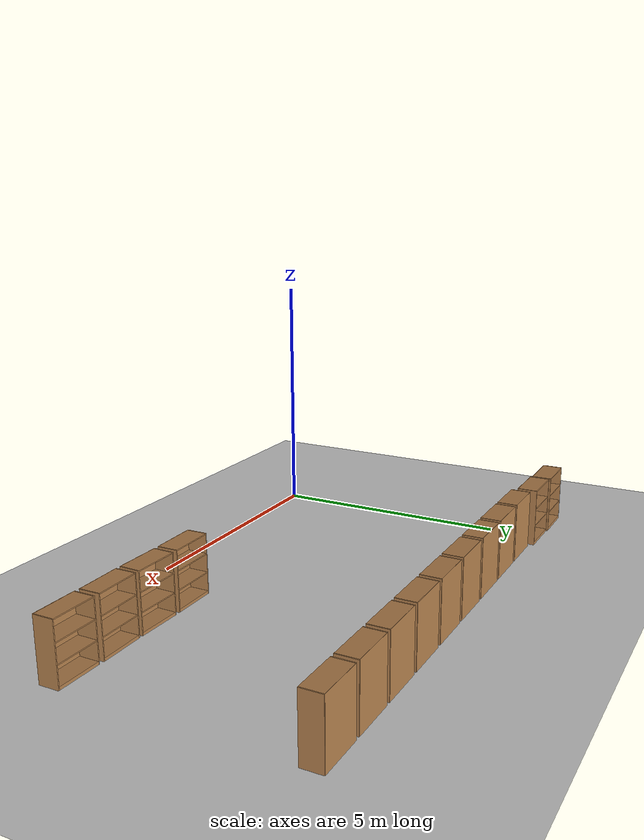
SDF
<sdf version="1.4">
 <world name="default">
  <model name="ground_plane">
   <static>1</static>
   <link name="link">
    <collision name="collision">
     <geometry><plane><normal>0 0 1</normal><size>100 100</size></plane></geometry>
     <surface><friction><ode><mu>100</mu><mu2>50</mu2></ode></friction></surface>
    </collision>
    <visual name="visual">
     <cast_shadows>0</cast_shadows>
     <geometry><plane><normal>0 0 1</normal><size>100 100</size></plane></geometry>
     <material>
      <script><uri>file://media/materials/scripts/gazebo.material</uri><name>Gazebo/Grey</name></script>
     </material>
    </visual>
    <velocity_decay><linear>0</linear><angular>0</angular></velocity_decay>
   </link>
  </model>
  <model name="bookshelf">
   <static>1</static>
   <link name="link">
    <inertial><mass>1</mass></inertial>
    <collision name="back">
     <pose>0 0.005 0.6 0 -0 0</pose>
     <geometry><box><size>0.9 0.01 1.2</size></box></geometry>
    </collision>
    <visual name="visual1">
     <pose>0 0.005 0.6 0 -0 0</pose>
     <geometry><box><size>0.9 0.01 1.2</size></box></geometry>
     <material>
      <script><uri>file://media/materials/scripts/gazebo.material</uri><name>Gazebo/Wood</name></script>
     </material>
    </visual>
    <collision name="left_side">
     <pose>0.45 -0.195 0.6 0 -0 0</pose>
     <geometry><box><size>0.02 0.4 1.2</size></box></geometry>
    </collision>
    <visual name="visual2">
     <pose>0.45 -0.195 0.6 0 -0 0</pose>
     <geometry><box><size>0.02 0.4 1.2</size></box></geometry>
     <material>
      <script><uri>file://media/materials/scripts/gazebo.material</uri><name>Gazebo/Wood</name></script>
     </material>
    </visual>
    <collision name="right_side">
     <pose>-0.45 -0.195 0.6 0 -0 0</pose>
     <geometry><box><size>0.02 0.4 1.2</size></box></geometry>
    </collision>
    <visual name="visual3">
     <pose>-0.45 -0.195 0.6 0 -0 0</pose>
     <geometry><box><size>0.02 0.4 1.2</size></box></geometry>
     <material>
      <script><uri>file://media/materials/scripts/gazebo.material</uri><name>Gazebo/Wood</name></script>
     </material>
    </visual>
    <collision name="bottom">
     <pose>0 -0.195 0.03 0 -0 0</pose>
     <geometry><box><size>0.88 0.4 0.06</size></box></geometry>
    </collision>
    <visual name="visual4">
     <pose>0 -0.195 0.03 0 -0 0</pose>
     <geometry><box><size>0.88 0.4 0.06</size></box></geometry>
     <material>
      <script><uri>file://media/materials/scripts/gazebo.material</uri><name>Gazebo/Wood</name></script>
     </material>
    </visual>
    <collision name="top">
     <pose>0 -0.195 1.19 0 -0 0</pose>
     <geometry><box><size>0.88 0.4 0.02</size></box></geometry>
    </collision>
    <visual name="visual5">
     <pose>0 -0.195 1.19 0 -0 0</pose>
     <geometry><box><size>0.88 0.4 0.02</size></box></geometry>
     <material>
      <script><uri>file://media/materials/scripts/gazebo.material</uri><name>Gazebo/Wood</name></script>
     </material>
    </visual>
    <collision name="low_shelf">
     <pose>0 -0.195 0.43 0 -0 0</pose>
     <geometry><box><size>0.88 0.4 0.02</size></box></geometry>
    </collision>
    <visual name="visual6">
     <pose>0 -0.195 0.43 0 -0 0</pose>
     <geometry><box><size>0.88 0.4 0.02</size></box></geometry>
     <material>
      <script><uri>file://media/materials/scripts/gazebo.material</uri><name>Gazebo/Wood</name></script>
     </material>
    </visual>
    <collision name="high_shelf">
     <pose>0 -0.195 0.8 0 -0 0</pose>
     <geometry><box><size>0.88 0.4 0.02</size></box></geometry>
    </collision>
    <visual name="visual7">
     <pose>0 -0.195 0.8 0 -0 0</pose>
     <geometry><box><size>0.88 0.4 0.02</size></box></geometry>
     <material>
      <script><uri>file://media/materials/scripts/gazebo.material</uri><name>Gazebo/Wood</name></script>
     </material>
    </visual>
    <velocity_decay><linear>0</linear><angular>0</angular></velocity_decay>
   </link>
   <pose>9 1 0 0 0 -3.13833</pose>
  </model>
  <model name="bookshelf_0">
   <static>1</static>
   <link name="link">
    <inertial><mass>1</mass></inertial>
    <collision name="back">
     <pose>0 0.005 0.6 0 -0 0</pose>
     <geometry><box><size>0.9 0.01 1.2</size></box></geometry>
    </collision>
    <visual name="visual1">
     <pose>0 0.005 0.6 0 -0 0</pose>
     <geometry><box><size>0.9 0.01 1.2</size></box></geometry>
     <material>
      <script><uri>file://media/materials/scripts/gazebo.material</uri><name>Gazebo/Wood</name></script>
     </material>
    </visual>
    <collision name="left_side">
     <pose>0.45 -0.195 0.6 0 -0 0</pose>
     <geometry><box><size>0.02 0.4 1.2</size></box></geometry>
    </collision>
    <visual name="visual2">
     <pose>0.45 -0.195 0.6 0 -0 0</pose>
     <geometry><box><size>0.02 0.4 1.2</size></box></geometry>
     <material>
      <script><uri>file://media/materials/scripts/gazebo.material</uri><name>Gazebo/Wood</name></script>
     </material>
    </visual>
    <collision name="right_side">
     <pose>-0.45 -0.195 0.6 0 -0 0</pose>
     <geometry><box><size>0.02 0.4 1.2</size></box></geometry>
    </collision>
    <visual name="visual3">
     <pose>-0.45 -0.195 0.6 0 -0 0</pose>
     <geometry><box><size>0.02 0.4 1.2</size></box></geometry>
     <material>
      <script><uri>file://media/materials/scripts/gazebo.material</uri><name>Gazebo/Wood</name></script>
     </material>
    </visual>
    <collision name="bottom">
     <pose>0 -0.195 0.03 0 -0 0</pose>
     <geometry><box><size>0.88 0.4 0.06</size></box></geometry>
    </collision>
    <visual name="visual4">
     <pose>0 -0.195 0.03 0 -0 0</pose>
     <geometry><box><size>0.88 0.4 0.06</size></box></geometry>
     <material>
      <script><uri>file://media/materials/scripts/gazebo.material</uri><name>Gazebo/Wood</name></script>
     </material>
    </visual>
    <collision name="top">
     <pose>0 -0.195 1.19 0 -0 0</pose>
     <geometry><box><size>0.88 0.4 0.02</size></box></geometry>
    </collision>
    <visual name="visual5">
     <pose>0 -0.195 1.19 0 -0 0</pose>
     <geometry><box><size>0.88 0.4 0.02</size></box></geometry>
     <material>
      <script><uri>file://media/materials/scripts/gazebo.material</uri><name>Gazebo/Wood</name></script>
     </material>
    </visual>
    <collision name="low_shelf">
     <pose>0 -0.195 0.43 0 -0 0</pose>
     <geometry><box><size>0.88 0.4 0.02</size></box></geometry>
    </collision>
    <visual name="visual6">
     <pose>0 -0.195 0.43 0 -0 0</pose>
     <geometry><box><size>0.88 0.4 0.02</size></box></geometry>
     <material>
      <script><uri>file://media/materials/scripts/gazebo.material</uri><name>Gazebo/Wood</name></script>
     </material>
    </visual>
    <collision name="high_shelf">
     <pose>0 -0.195 0.8 0 -0 0</pose>
     <geometry><box><size>0.88 0.4 0.02</size></box></geometry>
    </collision>
    <visual name="visual7">
     <pose>0 -0.195 0.8 0 -0 0</pose>
     <geometry><box><size>0.88 0.4 0.02</size></box></geometry>
     <material>
      <script><uri>file://media/materials/scripts/gazebo.material</uri><name>Gazebo/Wood</name></script>
     </material>
    </visual>
    <velocity_decay><linear>0</linear><angular>0</angular></velocity_decay>
   </link>
   <pose>8 1 0 0 0 -3.11916</pose>
  </model>
  <model name="bookshelf_1">
   <static>1</static>
   <link name="link">
    <inertial><mass>1</mass></inertial>
    <collision name="back">
     <pose>0 0.005 0.6 0 -0 0</pose>
     <geometry><box><size>0.9 0.01 1.2</size></box></geometry>
    </collision>
    <visual name="visual1">
     <pose>0 0.005 0.6 0 -0 0</pose>
     <geometry><box><size>0.9 0.01 1.2</size></box></geometry>
     <material>
      <script><uri>file://media/materials/scripts/gazebo.material</uri><name>Gazebo/Wood</name></script>
     </material>
    </visual>
    <collision name="left_side">
     <pose>0.45 -0.195 0.6 0 -0 0</pose>
     <geometry><box><size>0.02 0.4 1.2</size></box></geometry>
    </collision>
    <visual name="visual2">
     <pose>0.45 -0.195 0.6 0 -0 0</pose>
     <geometry><box><size>0.02 0.4 1.2</size></box></geometry>
     <material>
      <script><uri>file://media/materials/scripts/gazebo.material</uri><name>Gazebo/Wood</name></script>
     </material>
    </visual>
    <collision name="right_side">
     <pose>-0.45 -0.195 0.6 0 -0 0</pose>
     <geometry><box><size>0.02 0.4 1.2</size></box></geometry>
    </collision>
    <visual name="visual3">
     <pose>-0.45 -0.195 0.6 0 -0 0</pose>
     <geometry><box><size>0.02 0.4 1.2</size></box></geometry>
     <material>
      <script><uri>file://media/materials/scripts/gazebo.material</uri><name>Gazebo/Wood</name></script>
     </material>
    </visual>
    <collision name="bottom">
     <pose>0 -0.195 0.03 0 -0 0</pose>
     <geometry><box><size>0.88 0.4 0.06</size></box></geometry>
    </collision>
    <visual name="visual4">
     <pose>0 -0.195 0.03 0 -0 0</pose>
     <geometry><box><size>0.88 0.4 0.06</size></box></geometry>
     <material>
      <script><uri>file://media/materials/scripts/gazebo.material</uri><name>Gazebo/Wood</name></script>
     </material>
    </visual>
    <collision name="top">
     <pose>0 -0.195 1.19 0 -0 0</pose>
     <geometry><box><size>0.88 0.4 0.02</size></box></geometry>
    </collision>
    <visual name="visual5">
     <pose>0 -0.195 1.19 0 -0 0</pose>
     <geometry><box><size>0.88 0.4 0.02</size></box></geometry>
     <material>
      <script><uri>file://media/materials/scripts/gazebo.material</uri><name>Gazebo/Wood</name></script>
     </material>
    </visual>
    <collision name="low_shelf">
     <pose>0 -0.195 0.43 0 -0 0</pose>
     <geometry><box><size>0.88 0.4 0.02</size></box></geometry>
    </collision>
    <visual name="visual6">
     <pose>0 -0.195 0.43 0 -0 0</pose>
     <geometry><box><size>0.88 0.4 0.02</size></box></geometry>
     <material>
      <script><uri>file://media/materials/scripts/gazebo.material</uri><name>Gazebo/Wood</name></script>
     </material>
    </visual>
    <collision name="high_shelf">
     <pose>0 -0.195 0.8 0 -0 0</pose>
     <geometry><box><size>0.88 0.4 0.02</size></box></geometry>
    </collision>
    <visual name="visual7">
     <pose>0 -0.195 0.8 0 -0 0</pose>
     <geometry><box><size>0.88 0.4 0.02</size></box></geometry>
     <material>
      <script><uri>file://media/materials/scripts/gazebo.material</uri><name>Gazebo/Wood</name></script>
     </material>
    </visual>
    <velocity_decay><linear>0</linear><angular>0</angular></velocity_decay>
   </link>
   <pose>7 1 0 0 -0 3.12738</pose>
  </model>
  <model name="bookshelf_2">
   <static>1</static>
   <link name="link">
    <inertial><mass>1</mass></inertial>
    <collision name="back">
     <pose>0 0.005 0.6 0 -0 0</pose>
     <geometry><box><size>0.9 0.01 1.2</size></box></geometry>
    </collision>
    <visual name="visual1">
     <pose>0 0.005 0.6 0 -0 0</pose>
     <geometry><box><size>0.9 0.01 1.2</size></box></geometry>
     <material>
      <script><uri>file://media/materials/scripts/gazebo.material</uri><name>Gazebo/Wood</name></script>
     </material>
    </visual>
    <collision name="left_side">
     <pose>0.45 -0.195 0.6 0 -0 0</pose>
     <geometry><box><size>0.02 0.4 1.2</size></box></geometry>
    </collision>
    <visual name="visual2">
     <pose>0.45 -0.195 0.6 0 -0 0</pose>
     <geometry><box><size>0.02 0.4 1.2</size></box></geometry>
     <material>
      <script><uri>file://media/materials/scripts/gazebo.material</uri><name>Gazebo/Wood</name></script>
     </material>
    </visual>
    <collision name="right_side">
     <pose>-0.45 -0.195 0.6 0 -0 0</pose>
     <geometry><box><size>0.02 0.4 1.2</size></box></geometry>
    </collision>
    <visual name="visual3">
     <pose>-0.45 -0.195 0.6 0 -0 0</pose>
     <geometry><box><size>0.02 0.4 1.2</size></box></geometry>
     <material>
      <script><uri>file://media/materials/scripts/gazebo.material</uri><name>Gazebo/Wood</name></script>
     </material>
    </visual>
    <collision name="bottom">
     <pose>0 -0.195 0.03 0 -0 0</pose>
     <geometry><box><size>0.88 0.4 0.06</size></box></geometry>
    </collision>
    <visual name="visual4">
     <pose>0 -0.195 0.03 0 -0 0</pose>
     <geometry><box><size>0.88 0.4 0.06</size></box></geometry>
     <material>
      <script><uri>file://media/materials/scripts/gazebo.material</uri><name>Gazebo/Wood</name></script>
     </material>
    </visual>
    <collision name="top">
     <pose>0 -0.195 1.19 0 -0 0</pose>
     <geometry><box><size>0.88 0.4 0.02</size></box></geometry>
    </collision>
    <visual name="visual5">
     <pose>0 -0.195 1.19 0 -0 0</pose>
     <geometry><box><size>0.88 0.4 0.02</size></box></geometry>
     <material>
      <script><uri>file://media/materials/scripts/gazebo.material</uri><name>Gazebo/Wood</name></script>
     </material>
    </visual>
    <collision name="low_shelf">
     <pose>0 -0.195 0.43 0 -0 0</pose>
     <geometry><box><size>0.88 0.4 0.02</size></box></geometry>
    </collision>
    <visual name="visual6">
     <pose>0 -0.195 0.43 0 -0 0</pose>
     <geometry><box><size>0.88 0.4 0.02</size></box></geometry>
     <material>
      <script><uri>file://media/materials/scripts/gazebo.material</uri><name>Gazebo/Wood</name></script>
     </material>
    </visual>
    <collision name="high_shelf">
     <pose>0 -0.195 0.8 0 -0 0</pose>
     <geometry><box><size>0.88 0.4 0.02</size></box></geometry>
    </collision>
    <visual name="visual7">
     <pose>0 -0.195 0.8 0 -0 0</pose>
     <geometry><box><size>0.88 0.4 0.02</size></box></geometry>
     <material>
      <script><uri>file://media/materials/scripts/gazebo.material</uri><name>Gazebo/Wood</name></script>
     </material>
    </visual>
    <velocity_decay><linear>0</linear><angular>0</angular></velocity_decay>
   </link>
   <pose>6 1 0 0 0 -3.12478</pose>
  </model>
  <model name="bookshelf_11">
   <static>1</static>
   <link name="link">
    <inertial><mass>1</mass></inertial>
    <collision name="back">
     <pose>0 0.005 0.6 0 -0 0</pose>
     <geometry><box><size>0.9 0.01 1.2</size></box></geometry>
    </collision>
    <visual name="visual1">
     <pose>0 0.005 0.6 0 -0 0</pose>
     <geometry><box><size>0.9 0.01 1.2</size></box></geometry>
     <material>
      <script><uri>file://media/materials/scripts/gazebo.material</uri><name>Gazebo/Wood</name></script>
     </material>
    </visual>
    <collision name="left_side">
     <pose>0.45 -0.195 0.6 0 -0 0</pose>
     <geometry><box><size>0.02 0.4 1.2</size></box></geometry>
    </collision>
    <visual name="visual2">
     <pose>0.45 -0.195 0.6 0 -0 0</pose>
     <geometry><box><size>0.02 0.4 1.2</size></box></geometry>
     <material>
      <script><uri>file://media/materials/scripts/gazebo.material</uri><name>Gazebo/Wood</name></script>
     </material>
    </visual>
    <collision name="right_side">
     <pose>-0.45 -0.195 0.6 0 -0 0</pose>
     <geometry><box><size>0.02 0.4 1.2</size></box></geometry>
    </collision>
    <visual name="visual3">
     <pose>-0.45 -0.195 0.6 0 -0 0</pose>
     <geometry><box><size>0.02 0.4 1.2</size></box></geometry>
     <material>
      <script><uri>file://media/materials/scripts/gazebo.material</uri><name>Gazebo/Wood</name></script>
     </material>
    </visual>
    <collision name="bottom">
     <pose>0 -0.195 0.03 0 -0 0</pose>
     <geometry><box><size>0.88 0.4 0.06</size></box></geometry>
    </collision>
    <visual name="visual4">
     <pose>0 -0.195 0.03 0 -0 0</pose>
     <geometry><box><size>0.88 0.4 0.06</size></box></geometry>
     <material>
      <script><uri>file://media/materials/scripts/gazebo.material</uri><name>Gazebo/Wood</name></script>
     </material>
    </visual>
    <collision name="top">
     <pose>0 -0.195 1.19 0 -0 0</pose>
     <geometry><box><size>0.88 0.4 0.02</size></box></geometry>
    </collision>
    <visual name="visual5">
     <pose>0 -0.195 1.19 0 -0 0</pose>
     <geometry><box><size>0.88 0.4 0.02</size></box></geometry>
     <material>
      <script><uri>file://media/materials/scripts/gazebo.material</uri><name>Gazebo/Wood</name></script>
     </material>
    </visual>
    <collision name="low_shelf">
     <pose>0 -0.195 0.43 0 -0 0</pose>
     <geometry><box><size>0.88 0.4 0.02</size></box></geometry>
    </collision>
    <visual name="visual6">
     <pose>0 -0.195 0.43 0 -0 0</pose>
     <geometry><box><size>0.88 0.4 0.02</size></box></geometry>
     <material>
      <script><uri>file://media/materials/scripts/gazebo.material</uri><name>Gazebo/Wood</name></script>
     </material>
    </visual>
    <collision name="high_shelf">
     <pose>0 -0.195 0.8 0 -0 0</pose>
     <geometry><box><size>0.88 0.4 0.02</size></box></geometry>
    </collision>
    <visual name="visual7">
     <pose>0 -0.195 0.8 0 -0 0</pose>
     <geometry><box><size>0.88 0.4 0.02</size></box></geometry>
     <material>
      <script><uri>file://media/materials/scripts/gazebo.material</uri><name>Gazebo/Wood</name></script>
     </material>
    </visual>
    <velocity_decay><linear>0</linear><angular>0</angular></velocity_decay>
   </link>
   <pose>9 6 0 0 -0 0</pose>
  </model>
  <model name="bookshelf_12">
   <static>1</static>
   <link name="link">
    <inertial><mass>1</mass></inertial>
    <collision name="back">
     <pose>0 0.005 0.6 0 -0 0</pose>
     <geometry><box><size>0.9 0.01 1.2</size></box></geometry>
    </collision>
    <visual name="visual1">
     <pose>0 0.005 0.6 0 -0 0</pose>
     <geometry><box><size>0.9 0.01 1.2</size></box></geometry>
     <material>
      <script><uri>file://media/materials/scripts/gazebo.material</uri><name>Gazebo/Wood</name></script>
     </material>
    </visual>
    <collision name="left_side">
     <pose>0.45 -0.195 0.6 0 -0 0</pose>
     <geometry><box><size>0.02 0.4 1.2</size></box></geometry>
    </collision>
    <visual name="visual2">
     <pose>0.45 -0.195 0.6 0 -0 0</pose>
     <geometry><box><size>0.02 0.4 1.2</size></box></geometry>
     <material>
      <script><uri>file://media/materials/scripts/gazebo.material</uri><name>Gazebo/Wood</name></script>
     </material>
    </visual>
    <collision name="right_side">
     <pose>-0.45 -0.195 0.6 0 -0 0</pose>
     <geometry><box><size>0.02 0.4 1.2</size></box></geometry>
    </collision>
    <visual name="visual3">
     <pose>-0.45 -0.195 0.6 0 -0 0</pose>
     <geometry><box><size>0.02 0.4 1.2</size></box></geometry>
     <material>
      <script><uri>file://media/materials/scripts/gazebo.material</uri><name>Gazebo/Wood</name></script>
     </material>
    </visual>
    <collision name="bottom">
     <pose>0 -0.195 0.03 0 -0 0</pose>
     <geometry><box><size>0.88 0.4 0.06</size></box></geometry>
    </collision>
    <visual name="visual4">
     <pose>0 -0.195 0.03 0 -0 0</pose>
     <geometry><box><size>0.88 0.4 0.06</size></box></geometry>
     <material>
      <script><uri>file://media/materials/scripts/gazebo.material</uri><name>Gazebo/Wood</name></script>
     </material>
    </visual>
    <collision name="top">
     <pose>0 -0.195 1.19 0 -0 0</pose>
     <geometry><box><size>0.88 0.4 0.02</size></box></geometry>
    </collision>
    <visual name="visual5">
     <pose>0 -0.195 1.19 0 -0 0</pose>
     <geometry><box><size>0.88 0.4 0.02</size></box></geometry>
     <material>
      <script><uri>file://media/materials/scripts/gazebo.material</uri><name>Gazebo/Wood</name></script>
     </material>
    </visual>
    <collision name="low_shelf">
     <pose>0 -0.195 0.43 0 -0 0</pose>
     <geometry><box><size>0.88 0.4 0.02</size></box></geometry>
    </collision>
    <visual name="visual6">
     <pose>0 -0.195 0.43 0 -0 0</pose>
     <geometry><box><size>0.88 0.4 0.02</size></box></geometry>
     <material>
      <script><uri>file://media/materials/scripts/gazebo.material</uri><name>Gazebo/Wood</name></script>
     </material>
    </visual>
    <collision name="high_shelf">
     <pose>0 -0.195 0.8 0 -0 0</pose>
     <geometry><box><size>0.88 0.4 0.02</size></box></geometry>
    </collision>
    <visual name="visual7">
     <pose>0 -0.195 0.8 0 -0 0</pose>
     <geometry><box><size>0.88 0.4 0.02</size></box></geometry>
     <material>
      <script><uri>file://media/materials/scripts/gazebo.material</uri><name>Gazebo/Wood</name></script>
     </material>
    </visual>
    <velocity_decay><linear>0</linear><angular>0</angular></velocity_decay>
   </link>
   <pose>8 6 0 0 -0 0</pose>
  </model>
  <model name="bookshelf_13">
   <static>1</static>
   <link name="link">
    <inertial><mass>1</mass></inertial>
    <collision name="back">
     <pose>0 0.005 0.6 0 -0 0</pose>
     <geometry><box><size>0.9 0.01 1.2</size></box></geometry>
    </collision>
    <visual name="visual1">
     <pose>0 0.005 0.6 0 -0 0</pose>
     <geometry><box><size>0.9 0.01 1.2</size></box></geometry>
     <material>
      <script><uri>file://media/materials/scripts/gazebo.material</uri><name>Gazebo/Wood</name></script>
     </material>
    </visual>
    <collision name="left_side">
     <pose>0.45 -0.195 0.6 0 -0 0</pose>
     <geometry><box><size>0.02 0.4 1.2</size></box></geometry>
    </collision>
    <visual name="visual2">
     <pose>0.45 -0.195 0.6 0 -0 0</pose>
     <geometry><box><size>0.02 0.4 1.2</size></box></geometry>
     <material>
      <script><uri>file://media/materials/scripts/gazebo.material</uri><name>Gazebo/Wood</name></script>
     </material>
    </visual>
    <collision name="right_side">
     <pose>-0.45 -0.195 0.6 0 -0 0</pose>
     <geometry><box><size>0.02 0.4 1.2</size></box></geometry>
    </collision>
    <visual name="visual3">
     <pose>-0.45 -0.195 0.6 0 -0 0</pose>
     <geometry><box><size>0.02 0.4 1.2</size></box></geometry>
     <material>
      <script><uri>file://media/materials/scripts/gazebo.material</uri><name>Gazebo/Wood</name></script>
     </material>
    </visual>
    <collision name="bottom">
     <pose>0 -0.195 0.03 0 -0 0</pose>
     <geometry><box><size>0.88 0.4 0.06</size></box></geometry>
    </collision>
    <visual name="visual4">
     <pose>0 -0.195 0.03 0 -0 0</pose>
     <geometry><box><size>0.88 0.4 0.06</size></box></geometry>
     <material>
      <script><uri>file://media/materials/scripts/gazebo.material</uri><name>Gazebo/Wood</name></script>
     </material>
    </visual>
    <collision name="top">
     <pose>0 -0.195 1.19 0 -0 0</pose>
     <geometry><box><size>0.88 0.4 0.02</size></box></geometry>
    </collision>
    <visual name="visual5">
     <pose>0 -0.195 1.19 0 -0 0</pose>
     <geometry><box><size>0.88 0.4 0.02</size></box></geometry>
     <material>
      <script><uri>file://media/materials/scripts/gazebo.material</uri><name>Gazebo/Wood</name></script>
     </material>
    </visual>
    <collision name="low_shelf">
     <pose>0 -0.195 0.43 0 -0 0</pose>
     <geometry><box><size>0.88 0.4 0.02</size></box></geometry>
    </collision>
    <visual name="visual6">
     <pose>0 -0.195 0.43 0 -0 0</pose>
     <geometry><box><size>0.88 0.4 0.02</size></box></geometry>
     <material>
      <script><uri>file://media/materials/scripts/gazebo.material</uri><name>Gazebo/Wood</name></script>
     </material>
    </visual>
    <collision name="high_shelf">
     <pose>0 -0.195 0.8 0 -0 0</pose>
     <geometry><box><size>0.88 0.4 0.02</size></box></geometry>
    </collision>
    <visual name="visual7">
     <pose>0 -0.195 0.8 0 -0 0</pose>
     <geometry><box><size>0.88 0.4 0.02</size></box></geometry>
     <material>
      <script><uri>file://media/materials/scripts/gazebo.material</uri><name>Gazebo/Wood</name></script>
     </material>
    </visual>
    <velocity_decay><linear>0</linear><angular>0</angular></velocity_decay>
   </link>
   <pose>7 6 0 0 -0 0</pose>
  </model>
  <model name="bookshelf_14">
   <static>1</static>
   <link name="link">
    <inertial><mass>1</mass></inertial>
    <collision name="back">
     <pose>0 0.005 0.6 0 -0 0</pose>
     <geometry><box><size>0.9 0.01 1.2</size></box></geometry>
    </collision>
    <visual name="visual1">
     <pose>0 0.005 0.6 0 -0 0</pose>
     <geometry><box><size>0.9 0.01 1.2</size></box></geometry>
     <material>
      <script><uri>file://media/materials/scripts/gazebo.material</uri><name>Gazebo/Wood</name></script>
     </material>
    </visual>
    <collision name="left_side">
     <pose>0.45 -0.195 0.6 0 -0 0</pose>
     <geometry><box><size>0.02 0.4 1.2</size></box></geometry>
    </collision>
    <visual name="visual2">
     <pose>0.45 -0.195 0.6 0 -0 0</pose>
     <geometry><box><size>0.02 0.4 1.2</size></box></geometry>
     <material>
      <script><uri>file://media/materials/scripts/gazebo.material</uri><name>Gazebo/Wood</name></script>
     </material>
    </visual>
    <collision name="right_side">
     <pose>-0.45 -0.195 0.6 0 -0 0</pose>
     <geometry><box><size>0.02 0.4 1.2</size></box></geometry>
    </collision>
    <visual name="visual3">
     <pose>-0.45 -0.195 0.6 0 -0 0</pose>
     <geometry><box><size>0.02 0.4 1.2</size></box></geometry>
     <material>
      <script><uri>file://media/materials/scripts/gazebo.material</uri><name>Gazebo/Wood</name></script>
     </material>
    </visual>
    <collision name="bottom">
     <pose>0 -0.195 0.03 0 -0 0</pose>
     <geometry><box><size>0.88 0.4 0.06</size></box></geometry>
    </collision>
    <visual name="visual4">
     <pose>0 -0.195 0.03 0 -0 0</pose>
     <geometry><box><size>0.88 0.4 0.06</size></box></geometry>
     <material>
      <script><uri>file://media/materials/scripts/gazebo.material</uri><name>Gazebo/Wood</name></script>
     </material>
    </visual>
    <collision name="top">
     <pose>0 -0.195 1.19 0 -0 0</pose>
     <geometry><box><size>0.88 0.4 0.02</size></box></geometry>
    </collision>
    <visual name="visual5">
     <pose>0 -0.195 1.19 0 -0 0</pose>
     <geometry><box><size>0.88 0.4 0.02</size></box></geometry>
     <material>
      <script><uri>file://media/materials/scripts/gazebo.material</uri><name>Gazebo/Wood</name></script>
     </material>
    </visual>
    <collision name="low_shelf">
     <pose>0 -0.195 0.43 0 -0 0</pose>
     <geometry><box><size>0.88 0.4 0.02</size></box></geometry>
    </collision>
    <visual name="visual6">
     <pose>0 -0.195 0.43 0 -0 0</pose>
     <geometry><box><size>0.88 0.4 0.02</size></box></geometry>
     <material>
      <script><uri>file://media/materials/scripts/gazebo.material</uri><name>Gazebo/Wood</name></script>
     </material>
    </visual>
    <collision name="high_shelf">
     <pose>0 -0.195 0.8 0 -0 0</pose>
     <geometry><box><size>0.88 0.4 0.02</size></box></geometry>
    </collision>
    <visual name="visual7">
     <pose>0 -0.195 0.8 0 -0 0</pose>
     <geometry><box><size>0.88 0.4 0.02</size></box></geometry>
     <material>
      <script><uri>file://media/materials/scripts/gazebo.material</uri><name>Gazebo/Wood</name></script>
     </material>
    </visual>
    <velocity_decay><linear>0</linear><angular>0</angular></velocity_decay>
   </link>
   <pose>6 6 0 0 -0 0</pose>
  </model>
  <model name="bookshelf_15">
   <static>1</static>
   <link name="link">
    <inertial><mass>1</mass></inertial>
    <collision name="back">
     <pose>0 0.005 0.6 0 -0 0</pose>
     <geometry><box><size>0.9 0.01 1.2</size></box></geometry>
    </collision>
    <visual name="visual1">
     <pose>0 0.005 0.6 0 -0 0</pose>
     <geometry><box><size>0.9 0.01 1.2</size></box></geometry>
     <material>
      <script><uri>file://media/materials/scripts/gazebo.material</uri><name>Gazebo/Wood</name></script>
     </material>
    </visual>
    <collision name="left_side">
     <pose>0.45 -0.195 0.6 0 -0 0</pose>
     <geometry><box><size>0.02 0.4 1.2</size></box></geometry>
    </collision>
    <visual name="visual2">
     <pose>0.45 -0.195 0.6 0 -0 0</pose>
     <geometry><box><size>0.02 0.4 1.2</size></box></geometry>
     <material>
      <script><uri>file://media/materials/scripts/gazebo.material</uri><name>Gazebo/Wood</name></script>
     </material>
    </visual>
    <collision name="right_side">
     <pose>-0.45 -0.195 0.6 0 -0 0</pose>
     <geometry><box><size>0.02 0.4 1.2</size></box></geometry>
    </collision>
    <visual name="visual3">
     <pose>-0.45 -0.195 0.6 0 -0 0</pose>
     <geometry><box><size>0.02 0.4 1.2</size></box></geometry>
     <material>
      <script><uri>file://media/materials/scripts/gazebo.material</uri><name>Gazebo/Wood</name></script>
     </material>
    </visual>
    <collision name="bottom">
     <pose>0 -0.195 0.03 0 -0 0</pose>
     <geometry><box><size>0.88 0.4 0.06</size></box></geometry>
    </collision>
    <visual name="visual4">
     <pose>0 -0.195 0.03 0 -0 0</pose>
     <geometry><box><size>0.88 0.4 0.06</size></box></geometry>
     <material>
      <script><uri>file://media/materials/scripts/gazebo.material</uri><name>Gazebo/Wood</name></script>
     </material>
    </visual>
    <collision name="top">
     <pose>0 -0.195 1.19 0 -0 0</pose>
     <geometry><box><size>0.88 0.4 0.02</size></box></geometry>
    </collision>
    <visual name="visual5">
     <pose>0 -0.195 1.19 0 -0 0</pose>
     <geometry><box><size>0.88 0.4 0.02</size></box></geometry>
     <material>
      <script><uri>file://media/materials/scripts/gazebo.material</uri><name>Gazebo/Wood</name></script>
     </material>
    </visual>
    <collision name="low_shelf">
     <pose>0 -0.195 0.43 0 -0 0</pose>
     <geometry><box><size>0.88 0.4 0.02</size></box></geometry>
    </collision>
    <visual name="visual6">
     <pose>0 -0.195 0.43 0 -0 0</pose>
     <geometry><box><size>0.88 0.4 0.02</size></box></geometry>
     <material>
      <script><uri>file://media/materials/scripts/gazebo.material</uri><name>Gazebo/Wood</name></script>
     </material>
    </visual>
    <collision name="high_shelf">
     <pose>0 -0.195 0.8 0 -0 0</pose>
     <geometry><box><size>0.88 0.4 0.02</size></box></geometry>
    </collision>
    <visual name="visual7">
     <pose>0 -0.195 0.8 0 -0 0</pose>
     <geometry><box><size>0.88 0.4 0.02</size></box></geometry>
     <material>
      <script><uri>file://media/materials/scripts/gazebo.material</uri><name>Gazebo/Wood</name></script>
     </material>
    </visual>
    <velocity_decay><linear>0</linear><angular>0</angular></velocity_decay>
   </link>
   <pose>5 6 0 0 -0 0</pose>
  </model>
  <model name="bookshelf_16">
   <static>1</static>
   <link name="link">
    <inertial><mass>1</mass></inertial>
    <collision name="back">
     <pose>0 0.005 0.6 0 -0 0</pose>
     <geometry><box><size>0.9 0.01 1.2</size></box></geometry>
    </collision>
    <visual name="visual1">
     <pose>0 0.005 0.6 0 -0 0</pose>
     <geometry><box><size>0.9 0.01 1.2</size></box></geometry>
     <material>
      <script><uri>file://media/materials/scripts/gazebo.material</uri><name>Gazebo/Wood</name></script>
     </material>
    </visual>
    <collision name="left_side">
     <pose>0.45 -0.195 0.6 0 -0 0</pose>
     <geometry><box><size>0.02 0.4 1.2</size></box></geometry>
    </collision>
    <visual name="visual2">
     <pose>0.45 -0.195 0.6 0 -0 0</pose>
     <geometry><box><size>0.02 0.4 1.2</size></box></geometry>
     <material>
      <script><uri>file://media/materials/scripts/gazebo.material</uri><name>Gazebo/Wood</name></script>
     </material>
    </visual>
    <collision name="right_side">
     <pose>-0.45 -0.195 0.6 0 -0 0</pose>
     <geometry><box><size>0.02 0.4 1.2</size></box></geometry>
    </collision>
    <visual name="visual3">
     <pose>-0.45 -0.195 0.6 0 -0 0</pose>
     <geometry><box><size>0.02 0.4 1.2</size></box></geometry>
     <material>
      <script><uri>file://media/materials/scripts/gazebo.material</uri><name>Gazebo/Wood</name></script>
     </material>
    </visual>
    <collision name="bottom">
     <pose>0 -0.195 0.03 0 -0 0</pose>
     <geometry><box><size>0.88 0.4 0.06</size></box></geometry>
    </collision>
    <visual name="visual4">
     <pose>0 -0.195 0.03 0 -0 0</pose>
     <geometry><box><size>0.88 0.4 0.06</size></box></geometry>
     <material>
      <script><uri>file://media/materials/scripts/gazebo.material</uri><name>Gazebo/Wood</name></script>
     </material>
    </visual>
    <collision name="top">
     <pose>0 -0.195 1.19 0 -0 0</pose>
     <geometry><box><size>0.88 0.4 0.02</size></box></geometry>
    </collision>
    <visual name="visual5">
     <pose>0 -0.195 1.19 0 -0 0</pose>
     <geometry><box><size>0.88 0.4 0.02</size></box></geometry>
     <material>
      <script><uri>file://media/materials/scripts/gazebo.material</uri><name>Gazebo/Wood</name></script>
     </material>
    </visual>
    <collision name="low_shelf">
     <pose>0 -0.195 0.43 0 -0 0</pose>
     <geometry><box><size>0.88 0.4 0.02</size></box></geometry>
    </collision>
    <visual name="visual6">
     <pose>0 -0.195 0.43 0 -0 0</pose>
     <geometry><box><size>0.88 0.4 0.02</size></box></geometry>
     <material>
      <script><uri>file://media/materials/scripts/gazebo.material</uri><name>Gazebo/Wood</name></script>
     </material>
    </visual>
    <collision name="high_shelf">
     <pose>0 -0.195 0.8 0 -0 0</pose>
     <geometry><box><size>0.88 0.4 0.02</size></box></geometry>
    </collision>
    <visual name="visual7">
     <pose>0 -0.195 0.8 0 -0 0</pose>
     <geometry><box><size>0.88 0.4 0.02</size></box></geometry>
     <material>
      <script><uri>file://media/materials/scripts/gazebo.material</uri><name>Gazebo/Wood</name></script>
     </material>
    </visual>
    <velocity_decay><linear>0</linear><angular>0</angular></velocity_decay>
   </link>
   <pose>4 6 0 0 -0 0</pose>
  </model>
  <model name="bookshelf_17">
   <static>1</static>
   <link name="link">
    <inertial><mass>1</mass></inertial>
    <collision name="back">
     <pose>0 0.005 0.6 0 -0 0</pose>
     <geometry><box><size>0.9 0.01 1.2</size></box></geometry>
    </collision>
    <visual name="visual1">
     <pose>0 0.005 0.6 0 -0 0</pose>
     <geometry><box><size>0.9 0.01 1.2</size></box></geometry>
     <material>
      <script><uri>file://media/materials/scripts/gazebo.material</uri><name>Gazebo/Wood</name></script>
     </material>
    </visual>
    <collision name="left_side">
     <pose>0.45 -0.195 0.6 0 -0 0</pose>
     <geometry><box><size>0.02 0.4 1.2</size></box></geometry>
    </collision>
    <visual name="visual2">
     <pose>0.45 -0.195 0.6 0 -0 0</pose>
     <geometry><box><size>0.02 0.4 1.2</size></box></geometry>
     <material>
      <script><uri>file://media/materials/scripts/gazebo.material</uri><name>Gazebo/Wood</name></script>
     </material>
    </visual>
    <collision name="right_side">
     <pose>-0.45 -0.195 0.6 0 -0 0</pose>
     <geometry><box><size>0.02 0.4 1.2</size></box></geometry>
    </collision>
    <visual name="visual3">
     <pose>-0.45 -0.195 0.6 0 -0 0</pose>
     <geometry><box><size>0.02 0.4 1.2</size></box></geometry>
     <material>
      <script><uri>file://media/materials/scripts/gazebo.material</uri><name>Gazebo/Wood</name></script>
     </material>
    </visual>
    <collision name="bottom">
     <pose>0 -0.195 0.03 0 -0 0</pose>
     <geometry><box><size>0.88 0.4 0.06</size></box></geometry>
    </collision>
    <visual name="visual4">
     <pose>0 -0.195 0.03 0 -0 0</pose>
     <geometry><box><size>0.88 0.4 0.06</size></box></geometry>
     <material>
      <script><uri>file://media/materials/scripts/gazebo.material</uri><name>Gazebo/Wood</name></script>
     </material>
    </visual>
    <collision name="top">
     <pose>0 -0.195 1.19 0 -0 0</pose>
     <geometry><box><size>0.88 0.4 0.02</size></box></geometry>
    </collision>
    <visual name="visual5">
     <pose>0 -0.195 1.19 0 -0 0</pose>
     <geometry><box><size>0.88 0.4 0.02</size></box></geometry>
     <material>
      <script><uri>file://media/materials/scripts/gazebo.material</uri><name>Gazebo/Wood</name></script>
     </material>
    </visual>
    <collision name="low_shelf">
     <pose>0 -0.195 0.43 0 -0 0</pose>
     <geometry><box><size>0.88 0.4 0.02</size></box></geometry>
    </collision>
    <visual name="visual6">
     <pose>0 -0.195 0.43 0 -0 0</pose>
     <geometry><box><size>0.88 0.4 0.02</size></box></geometry>
     <material>
      <script><uri>file://media/materials/scripts/gazebo.material</uri><name>Gazebo/Wood</name></script>
     </material>
    </visual>
    <collision name="high_shelf">
     <pose>0 -0.195 0.8 0 -0 0</pose>
     <geometry><box><size>0.88 0.4 0.02</size></box></geometry>
    </collision>
    <visual name="visual7">
     <pose>0 -0.195 0.8 0 -0 0</pose>
     <geometry><box><size>0.88 0.4 0.02</size></box></geometry>
     <material>
      <script><uri>file://media/materials/scripts/gazebo.material</uri><name>Gazebo/Wood</name></script>
     </material>
    </visual>
    <velocity_decay><linear>0</linear><angular>0</angular></velocity_decay>
   </link>
   <pose>3 6 0 0 -0 0</pose>
  </model>
  <model name="bookshelf_18">
   <static>1</static>
   <link name="link">
    <inertial><mass>1</mass></inertial>
    <collision name="back">
     <pose>0 0.005 0.6 0 -0 0</pose>
     <geometry><box><size>0.9 0.01 1.2</size></box></geometry>
    </collision>
    <visual name="visual1">
     <pose>0 0.005 0.6 0 -0 0</pose>
     <geometry><box><size>0.9 0.01 1.2</size></box></geometry>
     <material>
      <script><uri>file://media/materials/scripts/gazebo.material</uri><name>Gazebo/Wood</name></script>
     </material>
    </visual>
    <collision name="left_side">
     <pose>0.45 -0.195 0.6 0 -0 0</pose>
     <geometry><box><size>0.02 0.4 1.2</size></box></geometry>
    </collision>
    <visual name="visual2">
     <pose>0.45 -0.195 0.6 0 -0 0</pose>
     <geometry><box><size>0.02 0.4 1.2</size></box></geometry>
     <material>
      <script><uri>file://media/materials/scripts/gazebo.material</uri><name>Gazebo/Wood</name></script>
     </material>
    </visual>
    <collision name="right_side">
     <pose>-0.45 -0.195 0.6 0 -0 0</pose>
     <geometry><box><size>0.02 0.4 1.2</size></box></geometry>
    </collision>
    <visual name="visual3">
     <pose>-0.45 -0.195 0.6 0 -0 0</pose>
     <geometry><box><size>0.02 0.4 1.2</size></box></geometry>
     <material>
      <script><uri>file://media/materials/scripts/gazebo.material</uri><name>Gazebo/Wood</name></script>
     </material>
    </visual>
    <collision name="bottom">
     <pose>0 -0.195 0.03 0 -0 0</pose>
     <geometry><box><size>0.88 0.4 0.06</size></box></geometry>
    </collision>
    <visual name="visual4">
     <pose>0 -0.195 0.03 0 -0 0</pose>
     <geometry><box><size>0.88 0.4 0.06</size></box></geometry>
     <material>
      <script><uri>file://media/materials/scripts/gazebo.material</uri><name>Gazebo/Wood</name></script>
     </material>
    </visual>
    <collision name="top">
     <pose>0 -0.195 1.19 0 -0 0</pose>
     <geometry><box><size>0.88 0.4 0.02</size></box></geometry>
    </collision>
    <visual name="visual5">
     <pose>0 -0.195 1.19 0 -0 0</pose>
     <geometry><box><size>0.88 0.4 0.02</size></box></geometry>
     <material>
      <script><uri>file://media/materials/scripts/gazebo.material</uri><name>Gazebo/Wood</name></script>
     </material>
    </visual>
    <collision name="low_shelf">
     <pose>0 -0.195 0.43 0 -0 0</pose>
     <geometry><box><size>0.88 0.4 0.02</size></box></geometry>
    </collision>
    <visual name="visual6">
     <pose>0 -0.195 0.43 0 -0 0</pose>
     <geometry><box><size>0.88 0.4 0.02</size></box></geometry>
     <material>
      <script><uri>file://media/materials/scripts/gazebo.material</uri><name>Gazebo/Wood</name></script>
     </material>
    </visual>
    <collision name="high_shelf">
     <pose>0 -0.195 0.8 0 -0 0</pose>
     <geometry><box><size>0.88 0.4 0.02</size></box></geometry>
    </collision>
    <visual name="visual7">
     <pose>0 -0.195 0.8 0 -0 0</pose>
     <geometry><box><size>0.88 0.4 0.02</size></box></geometry>
     <material>
      <script><uri>file://media/materials/scripts/gazebo.material</uri><name>Gazebo/Wood</name></script>
     </material>
    </visual>
    <velocity_decay><linear>0</linear><angular>0</angular></velocity_decay>
   </link>
   <pose>2 6 0 0 -0 0</pose>
  </model>
  <model name="bookshelf_19">
   <static>1</static>
   <link name="link">
    <inertial><mass>1</mass></inertial>
    <collision name="back">
     <pose>0 0.005 0.6 0 -0 0</pose>
     <geometry><box><size>0.9 0.01 1.2</size></box></geometry>
    </collision>
    <visual name="visual1">
     <pose>0 0.005 0.6 0 -0 0</pose>
     <geometry><box><size>0.9 0.01 1.2</size></box></geometry>
     <material>
      <script><uri>file://media/materials/scripts/gazebo.material</uri><name>Gazebo/Wood</name></script>
     </material>
    </visual>
    <collision name="left_side">
     <pose>0.45 -0.195 0.6 0 -0 0</pose>
     <geometry><box><size>0.02 0.4 1.2</size></box></geometry>
    </collision>
    <visual name="visual2">
     <pose>0.45 -0.195 0.6 0 -0 0</pose>
     <geometry><box><size>0.02 0.4 1.2</size></box></geometry>
     <material>
      <script><uri>file://media/materials/scripts/gazebo.material</uri><name>Gazebo/Wood</name></script>
     </material>
    </visual>
    <collision name="right_side">
     <pose>-0.45 -0.195 0.6 0 -0 0</pose>
     <geometry><box><size>0.02 0.4 1.2</size></box></geometry>
    </collision>
    <visual name="visual3">
     <pose>-0.45 -0.195 0.6 0 -0 0</pose>
     <geometry><box><size>0.02 0.4 1.2</size></box></geometry>
     <material>
      <script><uri>file://media/materials/scripts/gazebo.material</uri><name>Gazebo/Wood</name></script>
     </material>
    </visual>
    <collision name="bottom">
     <pose>0 -0.195 0.03 0 -0 0</pose>
     <geometry><box><size>0.88 0.4 0.06</size></box></geometry>
    </collision>
    <visual name="visual4">
     <pose>0 -0.195 0.03 0 -0 0</pose>
     <geometry><box><size>0.88 0.4 0.06</size></box></geometry>
     <material>
      <script><uri>file://media/materials/scripts/gazebo.material</uri><name>Gazebo/Wood</name></script>
     </material>
    </visual>
    <collision name="top">
     <pose>0 -0.195 1.19 0 -0 0</pose>
     <geometry><box><size>0.88 0.4 0.02</size></box></geometry>
    </collision>
    <visual name="visual5">
     <pose>0 -0.195 1.19 0 -0 0</pose>
     <geometry><box><size>0.88 0.4 0.02</size></box></geometry>
     <material>
      <script><uri>file://media/materials/scripts/gazebo.material</uri><name>Gazebo/Wood</name></script>
     </material>
    </visual>
    <collision name="low_shelf">
     <pose>0 -0.195 0.43 0 -0 0</pose>
     <geometry><box><size>0.88 0.4 0.02</size></box></geometry>
    </collision>
    <visual name="visual6">
     <pose>0 -0.195 0.43 0 -0 0</pose>
     <geometry><box><size>0.88 0.4 0.02</size></box></geometry>
     <material>
      <script><uri>file://media/materials/scripts/gazebo.material</uri><name>Gazebo/Wood</name></script>
     </material>
    </visual>
    <collision name="high_shelf">
     <pose>0 -0.195 0.8 0 -0 0</pose>
     <geometry><box><size>0.88 0.4 0.02</size></box></geometry>
    </collision>
    <visual name="visual7">
     <pose>0 -0.195 0.8 0 -0 0</pose>
     <geometry><box><size>0.88 0.4 0.02</size></box></geometry>
     <material>
      <script><uri>file://media/materials/scripts/gazebo.material</uri><name>Gazebo/Wood</name></script>
     </material>
    </visual>
    <velocity_decay><linear>0</linear><angular>0</angular></velocity_decay>
   </link>
   <pose>1 6 0 0 -0 0</pose>
  </model>
  <model name="bookshelf_20">
   <static>1</static>
   <link name="link">
    <inertial><mass>1</mass></inertial>
    <collision name="back">
     <pose>0 0.005 0.6 0 -0 0</pose>
     <geometry><box><size>0.9 0.01 1.2</size></box></geometry>
    </collision>
    <visual name="visual1">
     <pose>0 0.005 0.6 0 -0 0</pose>
     <geometry><box><size>0.9 0.01 1.2</size></box></geometry>
     <material>
      <script><uri>file://media/materials/scripts/gazebo.material</uri><name>Gazebo/Wood</name></script>
     </material>
    </visual>
    <collision name="left_side">
     <pose>0.45 -0.195 0.6 0 -0 0</pose>
     <geometry><box><size>0.02 0.4 1.2</size></box></geometry>
    </collision>
    <visual name="visual2">
     <pose>0.45 -0.195 0.6 0 -0 0</pose>
     <geometry><box><size>0.02 0.4 1.2</size></box></geometry>
     <material>
      <script><uri>file://media/materials/scripts/gazebo.material</uri><name>Gazebo/Wood</name></script>
     </material>
    </visual>
    <collision name="right_side">
     <pose>-0.45 -0.195 0.6 0 -0 0</pose>
     <geometry><box><size>0.02 0.4 1.2</size></box></geometry>
    </collision>
    <visual name="visual3">
     <pose>-0.45 -0.195 0.6 0 -0 0</pose>
     <geometry><box><size>0.02 0.4 1.2</size></box></geometry>
     <material>
      <script><uri>file://media/materials/scripts/gazebo.material</uri><name>Gazebo/Wood</name></script>
     </material>
    </visual>
    <collision name="bottom">
     <pose>0 -0.195 0.03 0 -0 0</pose>
     <geometry><box><size>0.88 0.4 0.06</size></box></geometry>
    </collision>
    <visual name="visual4">
     <pose>0 -0.195 0.03 0 -0 0</pose>
     <geometry><box><size>0.88 0.4 0.06</size></box></geometry>
     <material>
      <script><uri>file://media/materials/scripts/gazebo.material</uri><name>Gazebo/Wood</name></script>
     </material>
    </visual>
    <collision name="top">
     <pose>0 -0.195 1.19 0 -0 0</pose>
     <geometry><box><size>0.88 0.4 0.02</size></box></geometry>
    </collision>
    <visual name="visual5">
     <pose>0 -0.195 1.19 0 -0 0</pose>
     <geometry><box><size>0.88 0.4 0.02</size></box></geometry>
     <material>
      <script><uri>file://media/materials/scripts/gazebo.material</uri><name>Gazebo/Wood</name></script>
     </material>
    </visual>
    <collision name="low_shelf">
     <pose>0 -0.195 0.43 0 -0 0</pose>
     <geometry><box><size>0.88 0.4 0.02</size></box></geometry>
    </collision>
    <visual name="visual6">
     <pose>0 -0.195 0.43 0 -0 0</pose>
     <geometry><box><size>0.88 0.4 0.02</size></box></geometry>
     <material>
      <script><uri>file://media/materials/scripts/gazebo.material</uri><name>Gazebo/Wood</name></script>
     </material>
    </visual>
    <collision name="high_shelf">
     <pose>0 -0.195 0.8 0 -0 0</pose>
     <geometry><box><size>0.88 0.4 0.02</size></box></geometry>
    </collision>
    <visual name="visual7">
     <pose>0 -0.195 0.8 0 -0 0</pose>
     <geometry><box><size>0.88 0.4 0.02</size></box></geometry>
     <material>
      <script><uri>file://media/materials/scripts/gazebo.material</uri><name>Gazebo/Wood</name></script>
     </material>
    </visual>
    <velocity_decay><linear>0</linear><angular>0</angular></velocity_decay>
   </link>
   <pose>-0.026109 5.71527 0 0 -0 3.1415</pose>
  </model>
  <model name="bookshelf_21">
   <static>1</static>
   <link name="link">
    <inertial><mass>1</mass></inertial>
    <collision name="back">
     <pose>0 0.005 0.6 0 -0 0</pose>
     <geometry><box><size>0.9 0.01 1.2</size></box></geometry>
    </collision>
    <visual name="visual1">
     <pose>0 0.005 0.6 0 -0 0</pose>
     <geometry><box><size>0.9 0.01 1.2</size></box></geometry>
     <material>
      <script><uri>file://media/materials/scripts/gazebo.material</uri><name>Gazebo/Wood</name></script>
     </material>
    </visual>
    <collision name="left_side">
     <pose>0.45 -0.195 0.6 0 -0 0</pose>
     <geometry><box><size>0.02 0.4 1.2</size></box></geometry>
    </collision>
    <visual name="visual2">
     <pose>0.45 -0.195 0.6 0 -0 0</pose>
     <geometry><box><size>0.02 0.4 1.2</size></box></geometry>
     <material>
      <script><uri>file://media/materials/scripts/gazebo.material</uri><name>Gazebo/Wood</name></script>
     </material>
    </visual>
    <collision name="right_side">
     <pose>-0.45 -0.195 0.6 0 -0 0</pose>
     <geometry><box><size>0.02 0.4 1.2</size></box></geometry>
    </collision>
    <visual name="visual3">
     <pose>-0.45 -0.195 0.6 0 -0 0</pose>
     <geometry><box><size>0.02 0.4 1.2</size></box></geometry>
     <material>
      <script><uri>file://media/materials/scripts/gazebo.material</uri><name>Gazebo/Wood</name></script>
     </material>
    </visual>
    <collision name="bottom">
     <pose>0 -0.195 0.03 0 -0 0</pose>
     <geometry><box><size>0.88 0.4 0.06</size></box></geometry>
    </collision>
    <visual name="visual4">
     <pose>0 -0.195 0.03 0 -0 0</pose>
     <geometry><box><size>0.88 0.4 0.06</size></box></geometry>
     <material>
      <script><uri>file://media/materials/scripts/gazebo.material</uri><name>Gazebo/Wood</name></script>
     </material>
    </visual>
    <collision name="top">
     <pose>0 -0.195 1.19 0 -0 0</pose>
     <geometry><box><size>0.88 0.4 0.02</size></box></geometry>
    </collision>
    <visual name="visual5">
     <pose>0 -0.195 1.19 0 -0 0</pose>
     <geometry><box><size>0.88 0.4 0.02</size></box></geometry>
     <material>
      <script><uri>file://media/materials/scripts/gazebo.material</uri><name>Gazebo/Wood</name></script>
     </material>
    </visual>
    <collision name="low_shelf">
     <pose>0 -0.195 0.43 0 -0 0</pose>
     <geometry><box><size>0.88 0.4 0.02</size></box></geometry>
    </collision>
    <visual name="visual6">
     <pose>0 -0.195 0.43 0 -0 0</pose>
     <geometry><box><size>0.88 0.4 0.02</size></box></geometry>
     <material>
      <script><uri>file://media/materials/scripts/gazebo.material</uri><name>Gazebo/Wood</name></script>
     </material>
    </visual>
    <collision name="high_shelf">
     <pose>0 -0.195 0.8 0 -0 0</pose>
     <geometry><box><size>0.88 0.4 0.02</size></box></geometry>
    </collision>
    <visual name="visual7">
     <pose>0 -0.195 0.8 0 -0 0</pose>
     <geometry><box><size>0.88 0.4 0.02</size></box></geometry>
     <material>
      <script><uri>file://media/materials/scripts/gazebo.material</uri><name>Gazebo/Wood</name></script>
     </material>
    </visual>
    <velocity_decay><linear>0</linear><angular>0</angular></velocity_decay>
   </link>
   <pose>-0.965142 5.74076 0 0 0 -3.13245</pose>
  </model>
 </world>
</sdf>
